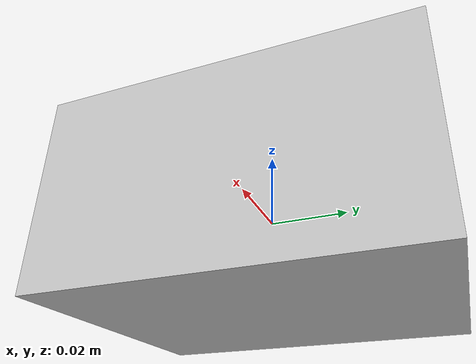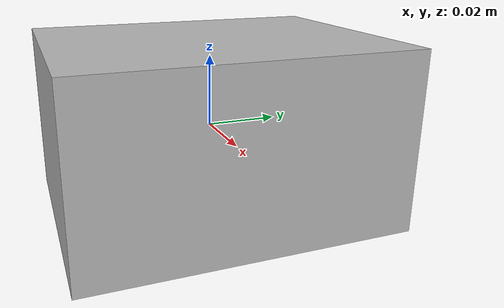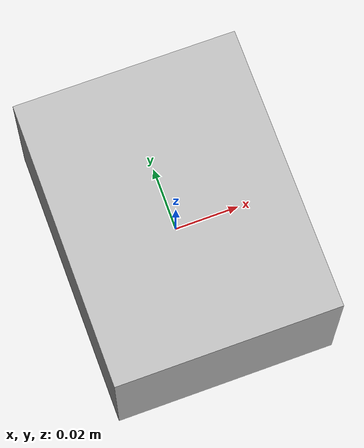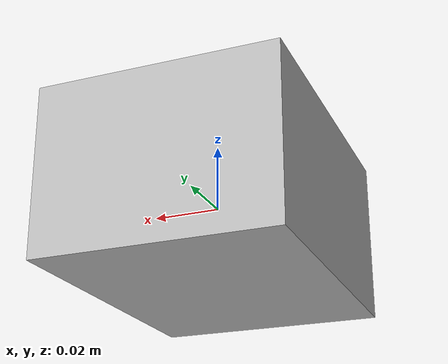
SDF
<?xml version="1.0" ?>
<sdf version="1.5">
  <model name="rm_rplidar">
    <link name="link">

      <inertial>
        <pose>0 0 0 0 0 0</pose>
        <mass>0.19</mass>
        <inertia>
          <ixx>4.15e-6</ixx>
          <ixy>0</ixy>
          <ixz>0</ixz>
          <iyy>2.407e-6</iyy>
          <iyz>0</iyz>
          <izz>2.407e-6</izz>
        </inertia>
      </inertial>

      <visual name="visual">
        <geometry>
          <box>
            <size>0.07 0.09 0.05</size>
          </box>
        </geometry>
      </visual>

      <sensor name="laser" type="gpu_ray">
        <ray>
          <scan>
            <horizontal>
              <samples>360</samples>
              <resolution>1</resolution>
              <min_angle>-3.14</min_angle>
              <max_angle>3.14</max_angle>
            </horizontal>
          </scan>
          <range>
            <min>0.2</min>
            <max>6</max>
            <resolution>0.05</resolution>
          </range>
          <noise>
            <type>gaussian</type>
            <mean>0.0</mean>
            <stddev>0.01</stddev>
          </noise>
        </ray>
        <plugin name="laser" filename="libGpuRayPlugin.so" />
        <plugin name="gazebo_ros_head_rplidar_controller" filename="libgazebo_ros_gpu_laser.so">
          <topicName>laser/scan</topicName>
          <frameName>rm_rplidar_link</frameName>
        </plugin>
        <always_on>1</always_on>
        <update_rate>5.5</update_rate>
        <visualize>true</visualize>
      </sensor>
    </link>
  </model>
</sdf>

<!-- vim: set et fenc= ff=unix sts=0 sw=2 ts=2 : -->
